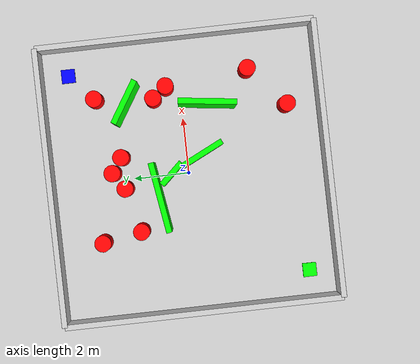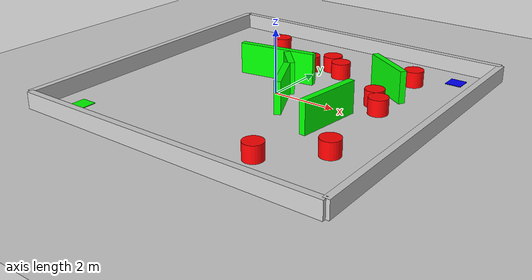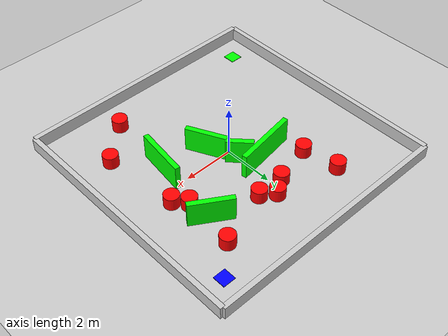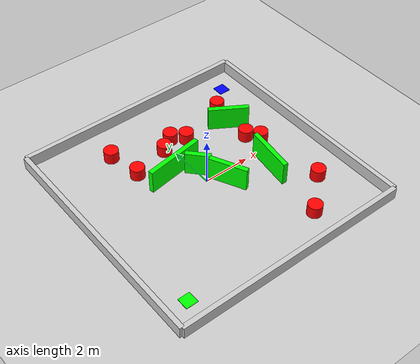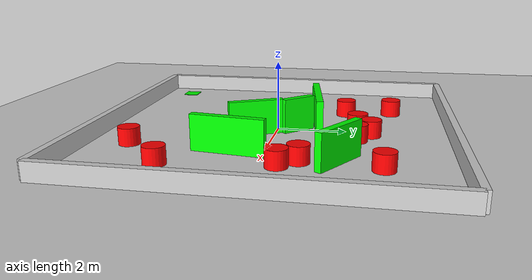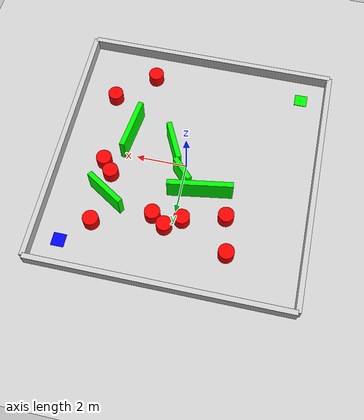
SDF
<?xml version="1.0"?>
<sdf version="1.6">
<world name="random_world">

  <include>
    <uri>model://ground_plane</uri>
  </include>

  <include>
    <uri>model://sun</uri>
  </include>

          <model name="wall_0">
            <static>true</static>
            <link name="wall_link_0">
              <pose>0 5 0 0 0 0</pose>
              <collision name="collision">
                <geometry>
                  <box><size>10 0.2 1</size></box>
                </geometry>
              </collision>
              <visual name="visual">
                <geometry>
                  <box><size>10 0.2 1</size></box>
                </geometry>
                <material><ambient>0.8 0.8 0.8 1</ambient></material>
              </visual>
            </link>
          </model>

          <model name="wall_1">
            <static>true</static>
            <link name="wall_link_1">
              <pose>0 -5 0 0 0 0</pose>
              <collision name="collision">
                <geometry>
                  <box><size>10 0.2 1</size></box>
                </geometry>
              </collision>
              <visual name="visual">
                <geometry>
                  <box><size>10 0.2 1</size></box>
                </geometry>
                <material><ambient>0.8 0.8 0.8 1</ambient></material>
              </visual>
            </link>
          </model>

          <model name="wall_2">
            <static>true</static>
            <link name="wall_link_2">
              <pose>5 0 0 0 0 0</pose>
              <collision name="collision">
                <geometry>
                  <box><size>0.2 10 1</size></box>
                </geometry>
              </collision>
              <visual name="visual">
                <geometry>
                  <box><size>0.2 10 1</size></box>
                </geometry>
                <material><ambient>0.8 0.8 0.8 1</ambient></material>
              </visual>
            </link>
          </model>

          <model name="wall_3">
            <static>true</static>
            <link name="wall_link_3">
              <pose>-5 0 0 0 0 0</pose>
              <collision name="collision">
                <geometry>
                  <box><size>0.2 10 1</size></box>
                </geometry>
              </collision>
              <visual name="visual">
                <geometry>
                  <box><size>0.2 10 1</size></box>
                </geometry>
                <material><ambient>0.8 0.8 0.8 1</ambient></material>
              </visual>
            </link>
          </model>

          <model name="obstacle_0">
            <static>true</static>
            <link name="obs_link_0">
              <pose>2.09095139572 -3.75606477947 0.25 0 0 0</pose>
              <collision name="collision">
                <geometry>
                  <cylinder><radius>0.3</radius><length>0.5</length></cylinder>
                </geometry>
              </collision>
              <visual name="visual">
                <geometry>
                  <cylinder><radius>0.3</radius><length>0.5</length></cylinder>
                </geometry>
                <material><ambient>1 0 0 1</ambient></material>
              </visual>
            </link>
          </model>

          <model name="obstacle_1">
            <static>true</static>
            <link name="obs_link_1">
              <pose>3.17787965597 0.507509606305 0.25 0 0 0</pose>
              <collision name="collision">
                <geometry>
                  <cylinder><radius>0.3</radius><length>0.5</length></cylinder>
                </geometry>
              </collision>
              <visual name="visual">
                <geometry>
                  <cylinder><radius>0.3</radius><length>0.5</length></cylinder>
                </geometry>
                <material><ambient>1 0 0 1</ambient></material>
              </visual>
            </link>
          </model>

          <model name="obstacle_2">
            <static>true</static>
            <link name="obs_link_2">
              <pose>-1.90657619383 1.90748289755 0.25 0 0 0</pose>
              <collision name="collision">
                <geometry>
                  <cylinder><radius>0.3</radius><length>0.5</length></cylinder>
                </geometry>
              </collision>
              <visual name="visual">
                <geometry>
                  <cylinder><radius>0.3</radius><length>0.5</length></cylinder>
                </geometry>
                <material><ambient>1 0 0 1</ambient></material>
              </visual>
            </link>
          </model>

          <model name="obstacle_3">
            <static>true</static>
            <link name="obs_link_3">
              <pose>3.50026951346 -2.47268327722 0.25 0 0 0</pose>
              <collision name="collision">
                <geometry>
                  <cylinder><radius>0.3</radius><length>0.5</length></cylinder>
                </geometry>
              </collision>
              <visual name="visual">
                <geometry>
                  <cylinder><radius>0.3</radius><length>0.5</length></cylinder>
                </geometry>
                <material><ambient>1 0 0 1</ambient></material>
              </visual>
            </link>
          </model>

          <model name="obstacle_4">
            <static>true</static>
            <link name="obs_link_4">
              <pose>2.98819867277 3.08297088642 0.25 0 0 0</pose>
              <collision name="collision">
                <geometry>
                  <cylinder><radius>0.3</radius><length>0.5</length></cylinder>
                </geometry>
              </collision>
              <visual name="visual">
                <geometry>
                  <cylinder><radius>0.3</radius><length>0.5</length></cylinder>
                </geometry>
                <material><ambient>1 0 0 1</ambient></material>
              </visual>
            </link>
          </model>

          <model name="obstacle_5">
            <static>true</static>
            <link name="obs_link_5">
              <pose>-0.314856787535 2.32616434135 0.25 0 0 0</pose>
              <collision name="collision">
                <geometry>
                  <cylinder><radius>0.3</radius><length>0.5</length></cylinder>
                </geometry>
              </collision>
              <visual name="visual">
                <geometry>
                  <cylinder><radius>0.3</radius><length>0.5</length></cylinder>
                </geometry>
                <material><ambient>1 0 0 1</ambient></material>
              </visual>
            </link>
          </model>

          <model name="obstacle_6">
            <static>true</static>
            <link name="obs_link_6">
              <pose>0.809283817315 2.35345726023 0.25 0 0 0</pose>
              <collision name="collision">
                <geometry>
                  <cylinder><radius>0.3</radius><length>0.5</length></cylinder>
                </geometry>
              </collision>
              <visual name="visual">
                <geometry>
                  <cylinder><radius>0.3</radius><length>0.5</length></cylinder>
                </geometry>
                <material><ambient>1 0 0 1</ambient></material>
              </visual>
            </link>
          </model>

          <model name="obstacle_7">
            <static>true</static>
            <link name="obs_link_7">
              <pose>0.280070023476 2.72501880981 0.25 0 0 0</pose>
              <collision name="collision">
                <geometry>
                  <cylinder><radius>0.3</radius><length>0.5</length></cylinder>
                </geometry>
              </collision>
              <visual name="visual">
                <geometry>
                  <cylinder><radius>0.3</radius><length>0.5</length></cylinder>
                </geometry>
                <material><ambient>1 0 0 1</ambient></material>
              </visual>
            </link>
          </model>

          <model name="obstacle_8">
            <static>true</static>
            <link name="obs_link_8">
              <pose>2.7900972698 0.989554823514 0.25 0 0 0</pose>
              <collision name="collision">
                <geometry>
                  <cylinder><radius>0.3</radius><length>0.5</length></cylinder>
                </geometry>
              </collision>
              <visual name="visual">
                <geometry>
                  <cylinder><radius>0.3</radius><length>0.5</length></cylinder>
                </geometry>
                <material><ambient>1 0 0 1</ambient></material>
              </visual>
            </link>
          </model>

          <model name="obstacle_9">
            <static>true</static>
            <link name="obs_link_9">
              <pose>-2.17078776473 3.32152357095 0.25 0 0 0</pose>
              <collision name="collision">
                <geometry>
                  <cylinder><radius>0.3</radius><length>0.5</length></cylinder>
                </geometry>
              </collision>
              <visual name="visual">
                <geometry>
                  <cylinder><radius>0.3</radius><length>0.5</length></cylinder>
                </geometry>
                <material><ambient>1 0 0 1</ambient></material>
              </visual>
            </link>
          </model>

          <model name="rand_wall_0">
            <static>true</static>
            <link name="rand_wall_link_0">
              <pose>-0.742374982563 1.08983365512 0.5 0 0 0.152447701474</pose>
              <collision name="collision">
                <geometry>
                  <box><size>2.49944024259 0.2 1</size></box>
                </geometry>
              </collision>
              <visual name="visual">
                <geometry>
                  <box><size>2.49944024259 0.2 1</size></box>
                </geometry>
                <material><ambient>0 1 0 1</ambient></material>
              </visual>
            </link>
          </model>

          <model name="rand_wall_1">
            <static>true</static>
            <link name="rand_wall_link_1">
              <pose>0.617903684616 -0.53401083818 0.5 0 0 2.02428066361</pose>
              <collision name="collision">
                <geometry>
                  <box><size>1.59788729889 0.2 1</size></box>
                </geometry>
              </collision>
              <visual name="visual">
                <geometry>
                  <box><size>1.59788729889 0.2 1</size></box>
                </geometry>
                <material><ambient>0 1 0 1</ambient></material>
              </visual>
            </link>
          </model>

          <model name="rand_wall_2">
            <static>true</static>
            <link name="rand_wall_link_2">
              <pose>0.0445348998484 0.597985418842 0.5 0 0 2.31895151191</pose>
              <collision name="collision">
                <geometry>
                  <box><size>1.02592210005 0.2 1</size></box>
                </geometry>
              </collision>
              <visual name="visual">
                <geometry>
                  <box><size>1.02592210005 0.2 1</size></box>
                </geometry>
                <material><ambient>0 1 0 1</ambient></material>
              </visual>
            </link>
          </model>

          <model name="rand_wall_3">
            <static>true</static>
            <link name="rand_wall_link_3">
              <pose>2.68642505028 1.9709799384 0.5 0 0 2.58345331276</pose>
              <collision name="collision">
                <geometry>
                  <box><size>1.66667488506 0.2 1</size></box>
                </geometry>
              </collision>
              <visual name="visual">
                <geometry>
                  <box><size>1.66667488506 0.2 1</size></box>
                </geometry>
                <material><ambient>0 1 0 1</ambient></material>
              </visual>
            </link>
          </model>

          <model name="rand_wall_4">
            <static>true</static>
            <link name="rand_wall_link_4">
              <pose>2.39545685996 -0.906852234021 0.5 0 0 1.44452586415</pose>
              <collision name="collision">
                <geometry>
                  <box><size>2.04218771992 0.2 1</size></box>
                </geometry>
              </collision>
              <visual name="visual">
                <geometry>
                  <box><size>2.04218771992 0.2 1</size></box>
                </geometry>
                <material><ambient>0 1 0 1</ambient></material>
              </visual>
            </link>
          </model>

  <model name="start_point">
    <static>true</static>
    <link name="start_link">
      <pose>-4 -4 0.01 0 0 0</pose>
      <visual name="visual">
        <geometry>
          <box><size>0.5 0.5 0.02</size></box>
        </geometry>
        <material><ambient>0 1 0 1</ambient></material>
      </visual>
    </link>
  </model>

  <model name="finish_point">
    <static>true</static>
    <link name="finish_link">
      <pose>4 4 0.01 0 0 0</pose>
      <visual name="visual">
        <geometry>
          <box><size>0.5 0.5 0.02</size></box>
        </geometry>
        <material><ambient>0 0 1 1</ambient></material>
      </visual>
    </link>
  </model>

</world>
</sdf>
